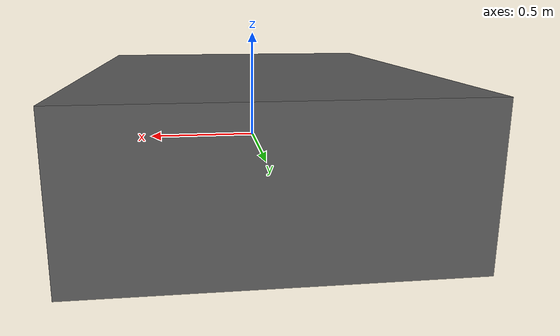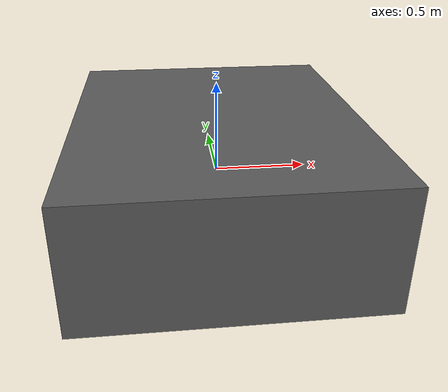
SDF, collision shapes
<?xml version="1.0" ?>
<sdf version="1.9">
  <model name="zephyr">
    <link name="wing">
<inertial>
  <!-- SR-75 inertial model, Phase 2 -->
  <!-- Dimensions used: wingspan b=1.6 m, chord c=0.625 m, approx length=1.53 m, height=0.65 m -->
  <!-- CGOffset from SR-75 JSON: [-0.15, 0.0, -0.05] -->
  <pose>-0.15 0 -0.05 0 0 0</pose>

  <mass>82.5</mass>

  <inertia>
    <!-- Approx box inertia: mass=82.5 kg, X=1.53 m, Y=1.6 m, Z=0.65 m -->
    <ixx>20.5</ixx>
    <ixy>0</ixy>
    <ixz>0</ixz>
    <iyy>19.0</iyy>
    <iyz>0</iyz>
    <izz>33.7</izz>
  </inertia>
</inertial>
<visual name="sr75_skyreaper_visual">
  <!-- STL exported in millimeters; Gazebo uses meters -->
  <!-- CAD center after mm to m: X=0.765, Y=0.936, Z=0.367 -->

  <pose>-0.765 -0.936 -0.367 0 0 0</pose>

  <geometry>
    <mesh>
      <uri>model://sr75_zephyr_physics/meshes/Skyreaper_Base_model.STL</uri>
      <scale>0.001 0.001 0.001</scale>
    </mesh>
  </geometry>

  <material>
    <ambient>0.35 0.35 0.35 1</ambient>
    <diffuse>0.35 0.35 0.35 1</diffuse>
    <specular>0.1 0.1 0.1 1</specular>
  </material>
</visual>
<collision name="sr75_body_collision">
  <!-- Simple SR-75 collision box: length, wingspan, height -->
  <pose>0 0 0 0 0 0</pose>
  <geometry>
    <box>
      <size>1.530 1.873 0.650</size>
    </box>
  </geometry>
</collision>

      <!-- save center of pressure locations for debugging -->

    </link>
    <link name="propeller">
      <pose degrees="true">0 0.07 0.008 0 90 0</pose>
      <inertial>
        <mass>.05</mass>
        <inertia>
          <ixx>0.000367571</ixx>
          <ixy>0</ixy>
          <iyy>0.00036985</iyy>
          <ixz>0</ixz>
          <iyz>0</iyz>
          <izz>0.000003187</izz>
        </inertia>
      </inertial>
      <collision name="blade1">
        <pose>0 0 0.074205 0 0  0.3</pose>
        <geometry>
          <box>
            <size>0.02561 0.00541 0.14841</size>
          </box>
        </geometry>
      </collision>
      <collision name="blade2">
        <pose>0 0 -0.074205 0 0  -0.3</pose>
        <geometry>
          <box>
            <size>0.02561 0.00541 0.14841</size>
          </box>
        </geometry>
      </collision>
    </link>
    <link name="flap_left">
      <pose>0.4530 .239 0.007 0 0 0</pose>
      <inertial>
        <pose>0 0 0 0 0 0.32445671</pose>
        <mass>.1</mass>
        <inertia>
          <ixx>0.000102319</ixx>
          <ixy>0</ixy>
          <iyy>0.00334417</iyy>
          <ixz>0</ixz>
          <iyz>0</iyz>
          <izz>0.003446072</izz>
        </inertia>
      </inertial>
      <collision name="collision">
        <pose>-0.01 0.01 0 0 0 0.32445671</pose>
        <geometry>
          <box>
            <size>0.633463031 0.110694312 0.005</size>
          </box>
        </geometry>
      </collision>
    </link>
    <link name="flap_right">
      <pose>-0.4530 .239 0.007 0 0 0</pose>
      <inertial>
        <pose>0 0 0 0 0 -0.32445671</pose>
        <mass>.1</mass>
        <inertia>
          <ixx>0.000102319</ixx>
          <ixy>0</ixy>
          <iyy>0.00334417</iyy>
          <ixz>0</ixz>
          <iyz>0</iyz>
          <izz>0.003446072</izz>
        </inertia>
      </inertial>
      <collision name="collision">
        <pose>0.01 0.01 0 0 0 -0.32445671</pose>
        <geometry>
          <box>
            <size>0.633463031 0.110694312 0.005</size>
          </box>
        </geometry>
      </collision>
    </link>
    <joint name="propeller_joint" type="revolute">
      <parent>wing</parent>
      <child>propeller</child>
      <axis>
        <xyz>0 -1 0</xyz>
        <dynamics>
          <damping>0.002</damping>
        </dynamics>
      </axis>
    </joint>
    <joint name="flap_left_joint" type="revolute">
      <parent>wing</parent>
      <child>flap_left</child>
      <pose>0 -0.04 0 0 0 0</pose>
      <axis>
        <xyz>1 0.330321014 0</xyz>
        <limit>
          <lower>-0.524</lower>
          <upper>0.524</upper>
        </limit>
        <dynamics>
          <damping>0.1</damping>
        </dynamics>
      </axis>
    </joint>
    <joint name="flap_right_joint" type="revolute">
      <parent>wing</parent>
      <child>flap_right</child>
      <pose>0 -0.04 0 0 0 0</pose>
      <axis>
        <xyz>1 -0.330321014 0</xyz>
        <limit>
          <lower>-0.524</lower>
          <upper>0.524</upper>
        </limit>
        <dynamics>
          <damping>0.1</damping>
        </dynamics>
      </axis>
    </joint>

    <!-- sensors -->
    <link name='imu_link'>
      <inertial>
        <pose>0 0 0 0 0 0</pose>
        <mass>0.15</mass>
        <inertia>
          <ixx>0.00002</ixx>
          <ixy>0</ixy>
          <ixz>0</ixz>
          <iyy>0.00002</iyy>
          <iyz>0</iyz>
          <izz>0.00002</izz>
        </inertia>
      </inertial>
      <sensor name="imu_sensor" type="imu">
        <gz_frame_id>imu_link</gz_frame_id>
        <pose degrees="true">0 0 0 180 0 -90</pose>
        <always_on>1</always_on>
        <update_rate>1000.0</update_rate>
      </sensor>
    </link>
    <joint name='imu_joint' type='revolute'>
      <child>imu_link</child>
      <parent>wing</parent>
      <axis>
        <xyz>0 0 1</xyz>
        <limit>
          <lower>0</lower>
          <upper>0</upper>
          <effort>0</effort>
          <velocity>0</velocity>
        </limit>
        <dynamics>
          <damping>1.0</damping>
        </dynamics>
      </axis>
    </joint>
  </model>
</sdf>
